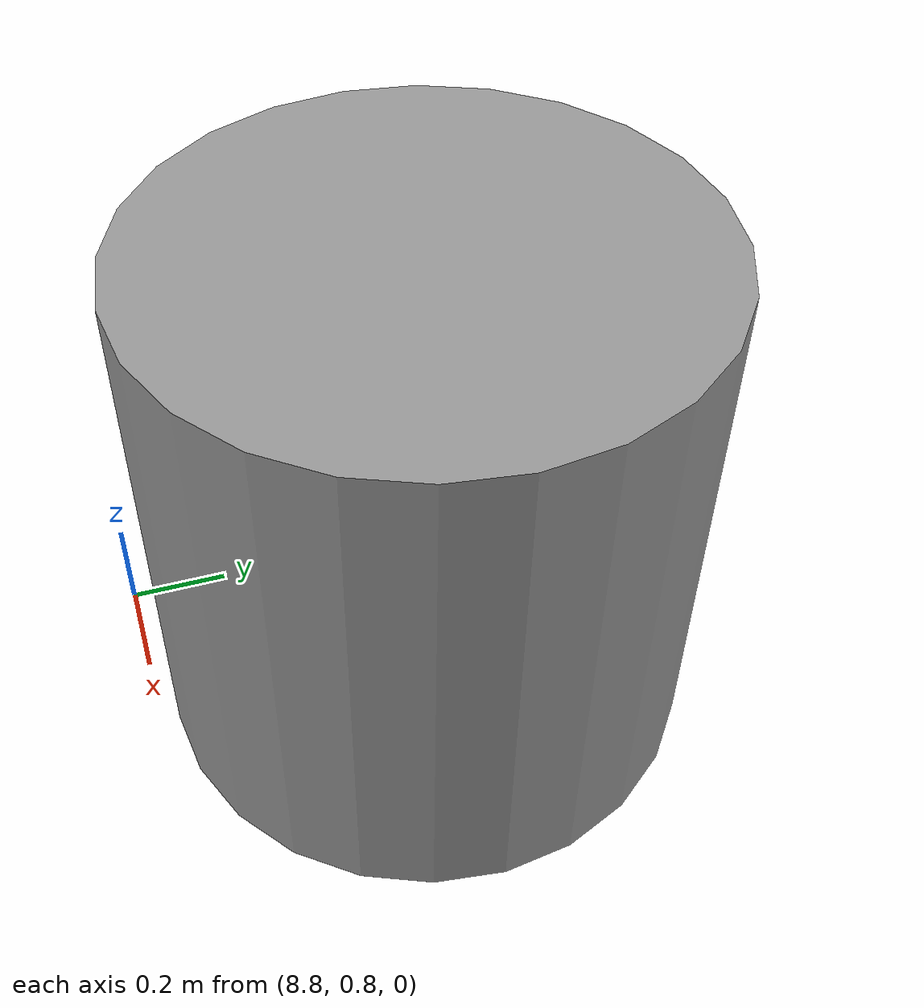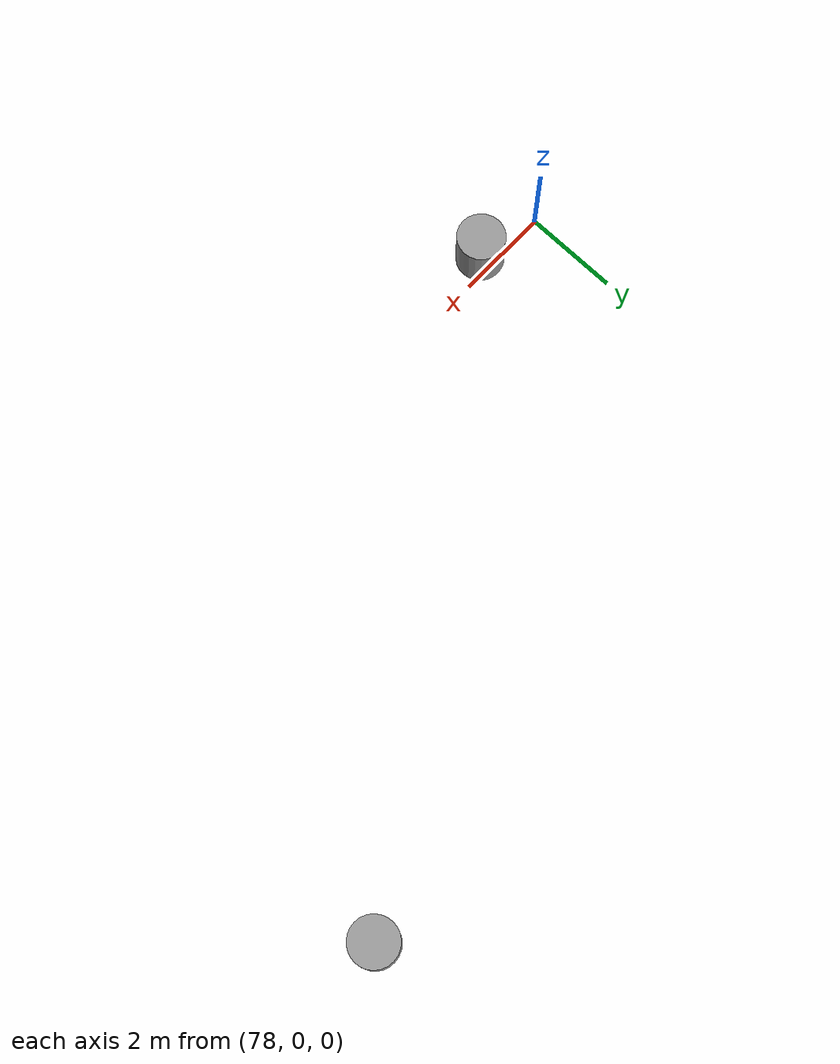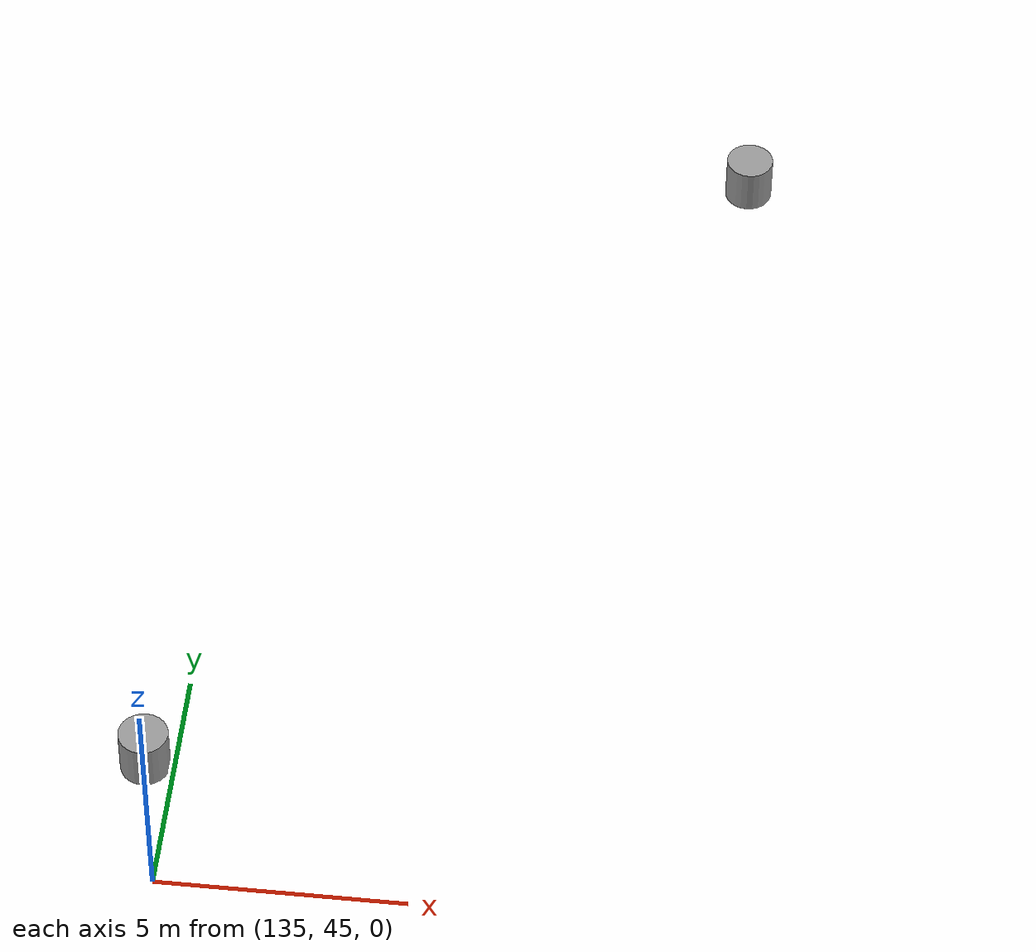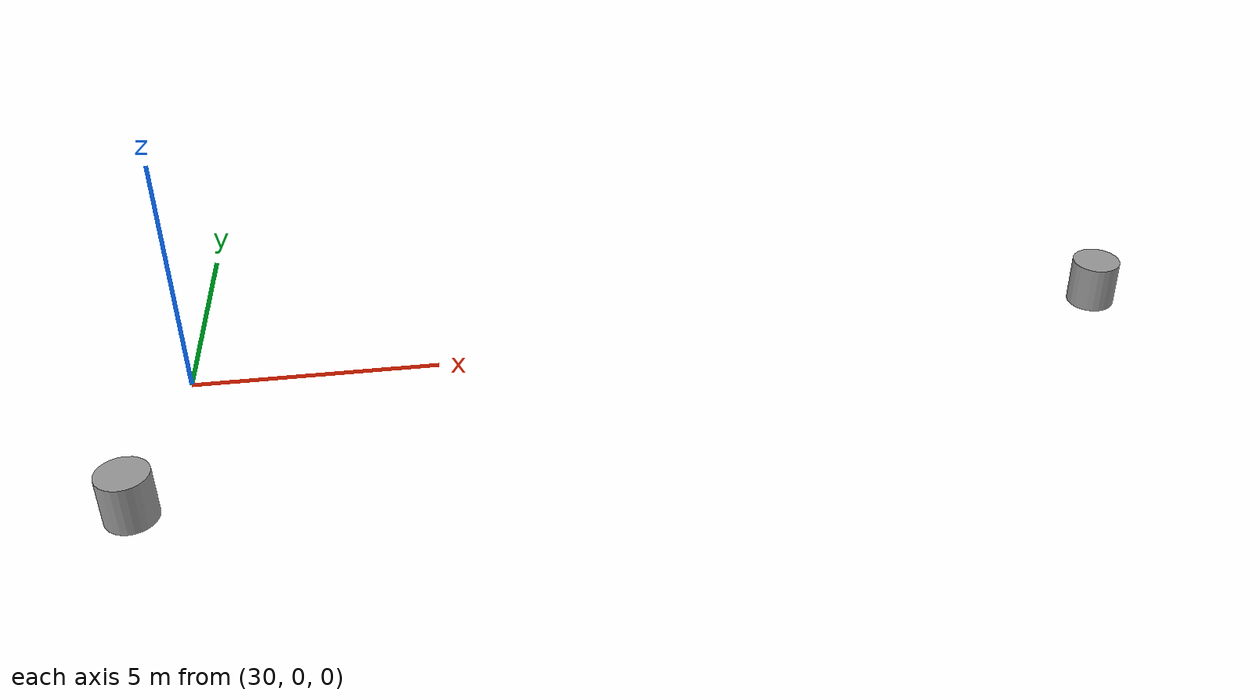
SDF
<sdf version="1.7">
 <world name="default">
  <light name="sun" type="directional">
   <pose>0 0 10 0 -0 0</pose>
   <diffuse>0.8 0.8 0.8 1</diffuse>
   <specular>0.2 0.2 0.2 1</specular>
   <attenuation>
    <range>1000</range>
    <constant>0.9</constant>
    <linear>0.01</linear>
    <quadratic>0.001</quadratic>
   </attenuation>
   <direction>-0.5 0.1 -0.9</direction>
   <spot><inner_angle>0</inner_angle><outer_angle>0</outer_angle><falloff>0</falloff></spot>
  </light>
  <gravity>0 0 -9.8</gravity>
  <magnetic_field>6e-06 2.3e-05 -4.2e-05</magnetic_field>
  <atmosphere type="adiabatic"/>
  <physics name="default_physics" default="0" type="ode">
   <max_step_size>0.001</max_step_size>
   <real_time_update_rate>1000</real_time_update_rate>
   <real_time_factor>1</real_time_factor>
  </physics>
  <scene><ambient>0.4 0.4 0.4 1</ambient><background>0.7 0.7 0.7 1</background><shadows>1</shadows></scene>
  <spherical_coordinates>
   <surface_model>EARTH_WGS84</surface_model>
   <latitude_deg>40.093</latitude_deg>
   <longitude_deg>-88.2358</longitude_deg>
   <elevation>220</elevation>
   <heading_deg>90</heading_deg>
  </spherical_coordinates>
  <audio><device>default</device></audio>
  <model name="unit_cylinder">
   <pose>9.22508 1.33804 0.599998 -4e-06 -1e-06 0.00011</pose>
   <link name="link">
    <inertial>
     <mass>1</mass>
     <inertia><ixx>0.145833</ixx><ixy>0</ixy><ixz>0</ixz><iyy>0.145833</iyy><iyz>0</iyz><izz>0.125</izz></inertia>
    </inertial>
    <collision name="collision">
     <geometry><cylinder><radius>0.5</radius><length>1</length></cylinder></geometry>
    </collision>
    <visual name="visual">
     <geometry><cylinder><radius>0.5</radius><length>1</length></cylinder></geometry>
     <material>
      <script><name>Gazebo/Grey</name><uri>file://media/materials/scripts/gazebo.material</uri></script>
     </material>
    </visual>
   </link>
  </model>
  <model name="unit_cylinder_0">
   <pose>29.4334 -4.20682 0.599993 4e-06 -3e-06 0.000147</pose>
   <link name="link">
    <inertial>
     <mass>1</mass>
     <inertia><ixx>0.145833</ixx><ixy>0</ixy><ixz>0</ixz><iyy>0.145833</iyy><iyz>0</iyz><izz>0.125</izz></inertia>
    </inertial>
    <collision name="collision">
     <geometry><cylinder><radius>0.5</radius><length>1</length></cylinder></geometry>
    </collision>
    <visual name="visual">
     <geometry><cylinder><radius>0.5</radius><length>1</length></cylinder></geometry>
     <material>
      <script><name>Gazebo/Grey</name><uri>file://media/materials/scripts/gazebo.material</uri></script>
     </material>
    </visual>
   </link>
  </model>
  <model name="unit_cylinder_1">
   <pose>49.3815 0.303881 0.599992 2e-06 -4e-06 7e-05</pose>
   <link name="link">
    <inertial>
     <mass>1</mass>
     <inertia><ixx>0.145833</ixx><ixy>0</ixy><ixz>0</ixz><iyy>0.145833</iyy><iyz>0</iyz><izz>0.125</izz></inertia>
    </inertial>
    <collision name="collision">
     <geometry><cylinder><radius>0.5</radius><length>1</length></cylinder></geometry>
    </collision>
    <visual name="visual">
     <geometry><cylinder><radius>0.5</radius><length>1</length></cylinder></geometry>
     <material>
      <script><name>Gazebo/Grey</name><uri>file://media/materials/scripts/gazebo.material</uri></script>
     </material>
    </visual>
   </link>
  </model>
  <model name="unit_cylinder_2">
   <pose>79.4012 -0.253754 0.599998 -4e-06 -4e-06 -4.5e-05</pose>
   <link name="link">
    <inertial>
     <mass>1</mass>
     <inertia><ixx>0.145833</ixx><ixy>0</ixy><ixz>0</ixz><iyy>0.145833</iyy><iyz>0</iyz><izz>0.125</izz></inertia>
    </inertial>
    <collision name="collision">
     <geometry><cylinder><radius>0.5</radius><length>1</length></cylinder></geometry>
    </collision>
    <visual name="visual">
     <geometry><cylinder><radius>0.5</radius><length>1</length></cylinder></geometry>
     <material>
      <script><name>Gazebo/Grey</name><uri>file://media/materials/scripts/gazebo.material</uri></script>
     </material>
    </visual>
   </link>
  </model>
  <model name="unit_cylinder_2_clone">
   <pose>90.7917 7.73236 0.599997 6e-06 -0 -2.5e-05</pose>
   <link name="link">
    <inertial>
     <mass>1</mass>
     <inertia><ixx>0.145833</ixx><ixy>0</ixy><ixz>0</ixz><iyy>0.145833</iyy><iyz>0</iyz><izz>0.125</izz></inertia>
    </inertial>
    <collision name="collision">
     <geometry><cylinder><radius>0.5</radius><length>1</length></cylinder></geometry>
    </collision>
    <visual name="visual">
     <geometry><cylinder><radius>0.5</radius><length>1</length></cylinder></geometry>
     <material>
      <script><name>Gazebo/Grey</name><uri>file://media/materials/scripts/gazebo.material</uri></script>
     </material>
    </visual>
   </link>
  </model>
  <model name="unit_cylinder_2_clone_clone">
   <pose>112.354 19.8392 0.59999 0 -0 0.000101</pose>
   <link name="link">
    <inertial>
     <mass>1</mass>
     <inertia><ixx>0.145833</ixx><ixy>0</ixy><ixz>0</ixz><iyy>0.145833</iyy><iyz>0</iyz><izz>0.125</izz></inertia>
    </inertial>
    <collision name="collision">
     <geometry><cylinder><radius>0.5</radius><length>1</length></cylinder></geometry>
    </collision>
    <visual name="visual">
     <geometry><cylinder><radius>0.5</radius><length>1</length></cylinder></geometry>
     <material>
      <script><name>Gazebo/Grey</name><uri>file://media/materials/scripts/gazebo.material</uri></script>
     </material>
    </visual>
   </link>
  </model>
  <model name="unit_cylinder_2_clone_clone_clone">
   <pose>127.83 31.4947 0.599996 7e-06 -3e-06 4.6e-05</pose>
   <link name="link">
    <inertial>
     <mass>1</mass>
     <inertia><ixx>0.145833</ixx><ixy>0</ixy><ixz>0</ixz><iyy>0.145833</iyy><iyz>0</iyz><izz>0.125</izz></inertia>
    </inertial>
    <collision name="collision">
     <geometry><cylinder><radius>0.5</radius><length>1</length></cylinder></geometry>
    </collision>
    <visual name="visual">
     <geometry><cylinder><radius>0.5</radius><length>1</length></cylinder></geometry>
     <material>
      <script><name>Gazebo/Grey</name><uri>file://media/materials/scripts/gazebo.material</uri></script>
     </material>
    </visual>
   </link>
  </model>
  <model name="unit_cylinder_2_clone_clone_clone_0">
   <pose>134.427 47.7556 0.599997 0 -4e-06 -1.9e-05</pose>
   <link name="link">
    <inertial>
     <mass>1</mass>
     <inertia><ixx>0.145833</ixx><ixy>0</ixy><ixz>0</ixz><iyy>0.145833</iyy><iyz>0</iyz><izz>0.125</izz></inertia>
    </inertial>
    <collision name="collision">
     <geometry><cylinder><radius>0.5</radius><length>1</length></cylinder></geometry>
    </collision>
    <visual name="visual">
     <geometry><cylinder><radius>0.5</radius><length>1</length></cylinder></geometry>
     <material>
      <script><name>Gazebo/Grey</name><uri>file://media/materials/scripts/gazebo.material</uri></script>
     </material>
    </visual>
   </link>
  </model>
  <model name="unit_cylinder_2_clone_clone_clone_0_clone">
   <pose>145.211 65.1848 0.599992 -2e-06 -1e-06 1e-06</pose>
   <link name="link">
    <inertial>
     <mass>1</mass>
     <inertia><ixx>0.145833</ixx><ixy>0</ixy><ixz>0</ixz><iyy>0.145833</iyy><iyz>0</iyz><izz>0.125</izz></inertia>
    </inertial>
    <collision name="collision">
     <geometry><cylinder><radius>0.5</radius><length>1</length></cylinder></geometry>
    </collision>
    <visual name="visual">
     <geometry><cylinder><radius>0.5</radius><length>1</length></cylinder></geometry>
     <material>
      <script><name>Gazebo/Grey</name><uri>file://media/materials/scripts/gazebo.material</uri></script>
     </material>
    </visual>
   </link>
  </model>
 </world>
</sdf>
